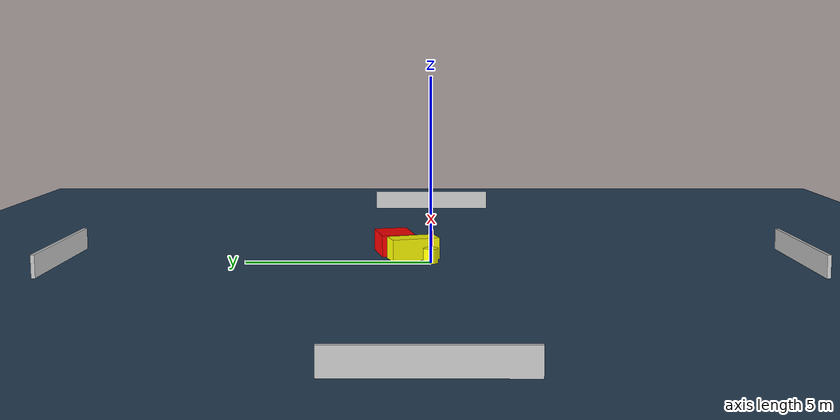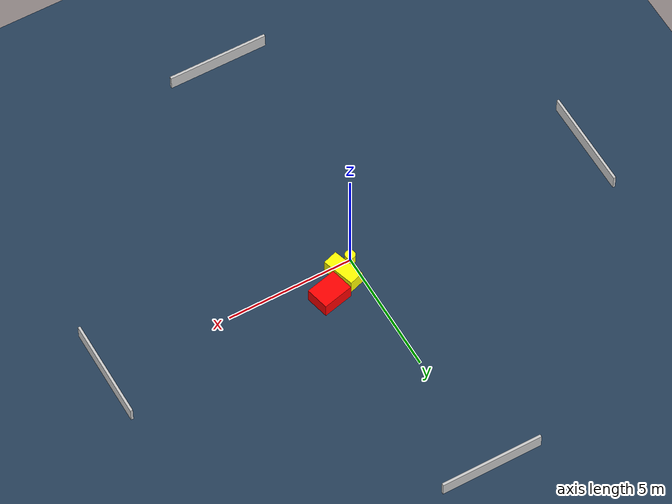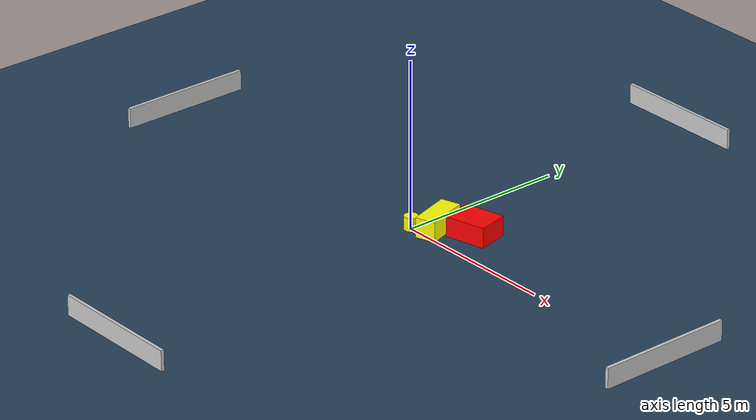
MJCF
<?xml version="1.0" ?>
<mujoco model="generated_environment">
  <option timestep="0.01" integrator="RK4" cone="elliptic"/>
  <default>
    <geom density="1"/>
  </default>
  <asset>
    <texture builtin="gradient" height="3072" name="skybox" rgb1="0.3 0.5 0.7" rgb2="0 0 0" type="skybox" width="512"/>
    <texture builtin="checker" height="300" name="groundplane" rgb1="0.2 0.3 0.4" rgb2="0.1 0.2 0.3" type="2d" width="300"/>
    <material name="groundplane" reflectance="0.2" texrepeat="5 5" texture="groundplane"/>
  </asset>
  <worldbody>
    <light dir="0 0 -1" directional="true" pos="0 0 1.5"/>
    <geom condim="3" friction="0.5 0.005 0.001" material="groundplane" name="floor" pos="0 0 0" size="0 0 0.05" type="plane"/>
    <body name="walls">
      <geom name="wall_1" condim="4" pos="-10.0 0.0 0.3" rgba="0.800000011920929 0.800000011920929 0.800000011920929 1.0" size="0.05 2.0 0.3" type="box"/>
      <geom name="wall_2" condim="4" pos="10.0 0.0 0.3" rgba="0.800000011920929 0.800000011920929 0.800000011920929 1.0" size="0.05 2.0 0.3" type="box"/>
      <geom name="wall_3" condim="4" pos="0.0 -10.0 0.3" rgba="0.800000011920929 0.800000011920929 0.800000011920929 1.0" size="2.0 0.05 0.3" type="box"/>
      <geom name="wall_4" condim="4" pos="0.0 10.0 0.3" rgba="0.800000011920929 0.800000011920929 0.800000011920929 1.0" size="2.0 0.05 0.3" type="box"/>
    </body>
    <body name="robot">
      <joint name="joint_x" type="slide" pos="0 0 0" axis="1 0 0"/>
      <joint name="joint_y" type="slide" pos="0 0 0" axis="0 1 0"/>
      <geom name="robot" type="cylinder" pos="0.0 0.0 0.2" size="0.2 0.2 0.0" mass="5.0" friction="1.0 0.005 0.0001" condim="4" rgba="1.0 1.0 0.0 1.0"/>
    </body>
    <body name="obstacle_1_movable">
      <geom name="obstacle_1_movable" condim="4" pos="0.5578337228646439 0.48279120296435635 0.3" euler="0 0 17.614399174758052" friction="0.0 0.005 0.001" rgba="1.0 1.0 0.0 1.0" size="0.2985554164611704 0.6633492550756108 0.3" type="box" mass="0.1"/>
      <joint type="free"/>
    </body>
    <body name="obstacle_2_static">
      <geom name="obstacle_2_static" condim="4" pos="1.4398474451861465 1.0292622345089653 0.3" euler="0 0 13.226653044393718" friction="0.0 0.005 0.001" rgba="1.0 0.0 0.0 1.0" size="0.6168643648894052 0.4680119127786459 0.3" type="box"/>
    </body>
  </worldbody>
  <actuator>
    <motor name="actuator_x" joint="joint_x" gear="1" ctrlrange="-1 1"/>
    <motor name="actuator_y" joint="joint_y" gear="1" ctrlrange="-1 1"/>
  </actuator>
</mujoco>
